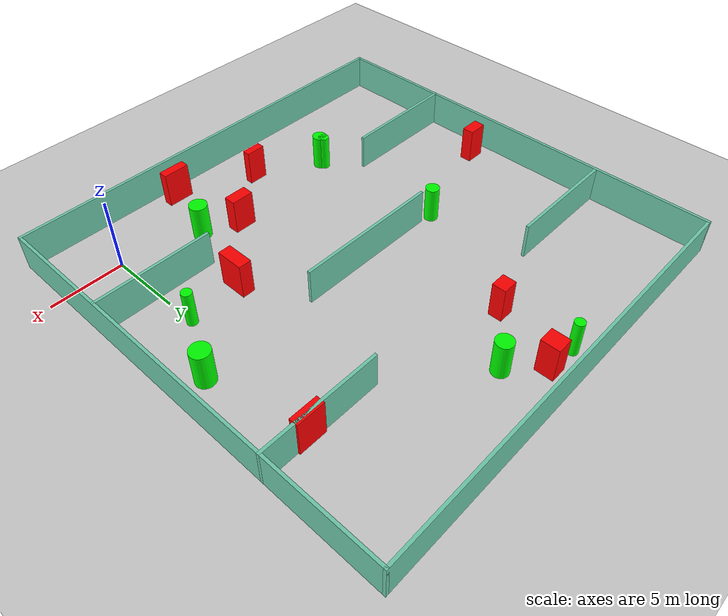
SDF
<sdf version="1.7">
 <world name="default">
  <light name="sun" type="directional">
   <pose>0 0 10 0 -0 0</pose>
   <diffuse>0.8 0.8 0.8 1</diffuse>
   <specular>0.2 0.2 0.2 1</specular>
   <attenuation>
    <range>1000</range>
    <constant>0.9</constant>
    <linear>0.01</linear>
    <quadratic>0.001</quadratic>
   </attenuation>
   <direction>-0.5 0.1 -0.9</direction>
   <spot><inner_angle>0</inner_angle><outer_angle>0</outer_angle><falloff>0</falloff></spot>
  </light>
  <model name="ground_plane">
   <static>1</static>
   <link name="link">
    <collision name="collision">
     <geometry><plane><normal>0 0 1</normal><size>100 100</size></plane></geometry>
     <surface>
      <contact><collide_bitmask>65535</collide_bitmask></contact>
      <friction><ode><mu>100</mu><mu2>50</mu2></ode></friction>
     </surface>
    </collision>
    <visual name="visual">
     <cast_shadows>0</cast_shadows>
     <geometry><plane><normal>0 0 1</normal><size>100 100</size></plane></geometry>
     <material>
      <script><uri>file://media/materials/scripts/gazebo.material</uri><name>Gazebo/Grey</name></script>
     </material>
    </visual>
   </link>
  </model>
  <gravity>0 0 -9.8</gravity>
  <magnetic_field>6e-06 2.3e-05 -4.2e-05</magnetic_field>
  <atmosphere type="adiabatic"/>
  <physics type="ode">
   <max_step_size>0.001</max_step_size>
   <real_time_factor>1</real_time_factor>
   <real_time_update_rate>1000</real_time_update_rate>
  </physics>
  <scene><ambient>0.4 0.4 0.4 1</ambient><background>0.7 0.7 0.7 1</background><shadows>1</shadows></scene>
  <spherical_coordinates>
   <surface_model>EARTH_WGS84</surface_model>
   <latitude_deg>0</latitude_deg>
   <longitude_deg>0</longitude_deg>
   <elevation>0</elevation>
   <heading_deg>0</heading_deg>
  </spherical_coordinates>
  <model name="my_base_walls">
   <link name="Wall_10">
    <collision name="Wall_10_Collision">
     <geometry><box><size>8.2 0.2 2.5</size></box></geometry>
     <pose>0 0 1.25 0 -0 0</pose>
    </collision>
    <visual name="Wall_10_Visual">
     <pose>0 0 1.25 0 -0 0</pose>
     <geometry><box><size>8.2 0.2 2.5</size></box></geometry>
     <material>
      <script><uri>file://media/materials/scripts/gazebo.material</uri><name>Gazebo/Grey</name></script>
      <ambient>0.435294 0.796078 0.67451 1</ambient>
     </material>
     <meta><layer>0</layer></meta>
    </visual>
    <pose>-11 -7 0 0 -0 0</pose>
   </link>
   <link name="Wall_12">
    <collision name="Wall_12_Collision">
     <geometry><box><size>8.2 0.2 2.5</size></box></geometry>
     <pose>0 0 1.25 0 -0 0</pose>
    </collision>
    <visual name="Wall_12_Visual">
     <pose>0 0 1.25 0 -0 0</pose>
     <geometry><box><size>8.2 0.2 2.5</size></box></geometry>
     <material>
      <script><uri>file://media/materials/scripts/gazebo.material</uri><name>Gazebo/Grey</name></script>
      <ambient>0.435294 0.796078 0.67451 1</ambient>
     </material>
     <meta><layer>0</layer></meta>
    </visual>
    <pose>-11 7 0 0 -0 0</pose>
   </link>
   <link name="Wall_14">
    <collision name="Wall_14_Collision">
     <geometry><box><size>8.2 0.2 2.5</size></box></geometry>
     <pose>0 0 1.25 0 -0 0</pose>
    </collision>
    <visual name="Wall_14_Visual">
     <pose>0 0 1.25 0 -0 0</pose>
     <geometry><box><size>8.2 0.2 2.5</size></box></geometry>
     <material>
      <script><uri>file://media/materials/scripts/gazebo.material</uri><name>Gazebo/Grey</name></script>
      <ambient>0.435294 0.796078 0.67451 1</ambient>
     </material>
     <meta><layer>0</layer></meta>
    </visual>
    <pose>11 7 0 0 -0 3.14159</pose>
   </link>
   <link name="Wall_16">
    <collision name="Wall_16_Collision">
     <geometry><box><size>10.2 0.2 2.5</size></box></geometry>
     <pose>0 0 1.25 0 -0 0</pose>
    </collision>
    <visual name="Wall_16_Visual">
     <pose>0 0 1.25 0 -0 0</pose>
     <geometry><box><size>10.2 0.2 2.5</size></box></geometry>
     <material>
      <script><uri>file://media/materials/scripts/gazebo.material</uri><name>Gazebo/Grey</name></script>
      <ambient>0.435294 0.796078 0.67451 1</ambient>
     </material>
     <meta><layer>0</layer></meta>
    </visual>
    <pose>0 0 0 0 -0 3.14159</pose>
   </link>
   <link name="Wall_2">
    <collision name="Wall_2_Collision">
     <geometry><box><size>30.2 0.2 2.5</size></box></geometry>
     <pose>0 0 1.25 0 -0 0</pose>
    </collision>
    <visual name="Wall_2_Visual">
     <pose>0 0 1.25 0 -0 0</pose>
     <geometry><box><size>30.2 0.2 2.5</size></box></geometry>
     <material>
      <script><uri>file://media/materials/scripts/gazebo.material</uri><name>Gazebo/Grey</name></script>
      <ambient>0.435294 0.796078 0.67451 1</ambient>
     </material>
     <meta><layer>0</layer></meta>
    </visual>
    <pose>0 -15 0 0 -0 3.14159</pose>
   </link>
   <link name="Wall_3">
    <collision name="Wall_3_Collision">
     <geometry><box><size>30.2 0.2 2.5</size></box></geometry>
     <pose>0 0 1.25 0 -0 0</pose>
    </collision>
    <visual name="Wall_3_Visual">
     <pose>0 0 1.25 0 -0 0</pose>
     <geometry><box><size>30.2 0.2 2.5</size></box></geometry>
     <material>
      <script><uri>file://media/materials/scripts/gazebo.material</uri><name>Gazebo/Grey</name></script>
      <ambient>0.435294 0.796078 0.67451 1</ambient>
     </material>
     <meta><layer>0</layer></meta>
    </visual>
    <pose>-15 0 0 0 -0 1.5708</pose>
   </link>
   <link name="Wall_4">
    <collision name="Wall_4_Collision">
     <geometry><box><size>30.2 0.2 2.5</size></box></geometry>
     <pose>0 0 1.25 0 -0 0</pose>
    </collision>
    <visual name="Wall_4_Visual">
     <pose>0 0 1.25 0 -0 0</pose>
     <geometry><box><size>30.2 0.2 2.5</size></box></geometry>
     <material>
      <script><uri>file://media/materials/scripts/gazebo.material</uri><name>Gazebo/Grey</name></script>
      <ambient>0.435294 0.796078 0.67451 1</ambient>
     </material>
     <meta><layer>0</layer></meta>
    </visual>
    <pose>0 15 0 0 -0 0</pose>
   </link>
   <link name="Wall_6">
    <collision name="Wall_6_Collision">
     <geometry><box><size>30.2 0.2 2.5</size></box></geometry>
     <pose>0 0 1.25 0 -0 0</pose>
    </collision>
    <visual name="Wall_6_Visual">
     <pose>0 0 1.25 0 -0 0</pose>
     <geometry><box><size>30.2 0.2 2.5</size></box></geometry>
     <material>
      <script><uri>file://media/materials/scripts/gazebo.material</uri><name>Gazebo/Grey</name></script>
      <ambient>0.435294 0.796078 0.67451 1</ambient>
     </material>
     <meta><layer>0</layer></meta>
    </visual>
    <pose>15 0 0 0 -0 1.5708</pose>
   </link>
   <link name="Wall_8">
    <collision name="Wall_8_Collision">
     <geometry><box><size>8.2 0.2 2.5</size></box></geometry>
     <pose>0 0 1.25 0 -0 0</pose>
    </collision>
    <visual name="Wall_8_Visual">
     <pose>0 0 1.25 0 -0 0</pose>
     <geometry><box><size>8.2 0.2 2.5</size></box></geometry>
     <material>
      <script><uri>file://media/materials/scripts/gazebo.material</uri><name>Gazebo/Grey</name></script>
      <ambient>0.435294 0.796078 0.67451 1</ambient>
     </material>
     <meta><layer>0</layer></meta>
    </visual>
    <pose>11 -7 0 0 -0 3.14159</pose>
   </link>
   <static>1</static>
   <pose>-11 11 0 0 -0 0</pose>
  </model>
  <model name="cylinder1">
   <static>1</static>
   <link name="link">
    <inertial>
     <mass>1</mass>
     <inertia><ixx>0.5</ixx><ixy>0</ixy><ixz>0</ixz><iyy>0.5</iyy><iyz>0</iyz><izz>1</izz></inertia>
    </inertial>
    <collision name="collision">
     <geometry><cylinder><radius>0.568939197417687</radius><length>2.5</length></cylinder></geometry>
    </collision>
    <visual name="visual">
     <geometry><cylinder><radius>0.568939197417687</radius><length>2.5</length></cylinder></geometry>
     <material>
      <ambient>0 1 0 1</ambient>
      <diffuse>0 1 0 1</diffuse>
      <specular>0.1 0.1 0.1 1</specular>
      <emissive>0 0 0 0</emissive>
     </material>
    </visual>
   </link>
   <pose>-9.394006186406795 22.397713277110547 1.25 0 0 0</pose>
  </model>
  <model name="cylinder2">
   <static>1</static>
   <link name="link">
    <inertial>
     <mass>1</mass>
     <inertia><ixx>0.5</ixx><ixy>0</ixy><ixz>0</ixz><iyy>0.5</iyy><iyz>0</iyz><izz>1</izz></inertia>
    </inertial>
    <collision name="collision">
     <geometry><cylinder><radius>0.47159929019017804</radius><length>2.5</length></cylinder></geometry>
    </collision>
    <visual name="visual">
     <geometry><cylinder><radius>0.47159929019017804</radius><length>2.5</length></cylinder></geometry>
     <material>
      <ambient>0 1 0 1</ambient>
      <diffuse>0 1 0 1</diffuse>
      <specular>0.1 0.1 0.1 1</specular>
      <emissive>0 0 0 0</emissive>
     </material>
    </visual>
   </link>
   <pose>-16.896494589913456 11.245341430718547 1.25 0 0 0</pose>
  </model>
  <model name="cylinder3">
   <static>1</static>
   <link name="link">
    <inertial>
     <mass>1</mass>
     <inertia><ixx>0.5</ixx><ixy>0</ixy><ixz>0</ixz><iyy>0.5</iyy><iyz>0</iyz><izz>1</izz></inertia>
    </inertial>
    <collision name="collision">
     <geometry><cylinder><radius>0.3703290364738131</radius><length>2.5</length></cylinder></geometry>
    </collision>
    <visual name="visual">
     <geometry><cylinder><radius>0.3703290364738131</radius><length>2.5</length></cylinder></geometry>
     <material>
      <ambient>0 1 0 1</ambient>
      <diffuse>0 1 0 1</diffuse>
      <specular>0.1 0.1 0.1 1</specular>
      <emissive>0 0 0 0</emissive>
     </material>
    </visual>
   </link>
   <pose>-16.082276400162648 1.8889381737255952 1.25 0 0 0</pose>
  </model>
  <model name="cylinder4">
   <static>1</static>
   <link name="link">
    <inertial>
     <mass>1</mass>
     <inertia><ixx>0.5</ixx><ixy>0</ixy><ixz>0</ixz><iyy>0.5</iyy><iyz>0</iyz><izz>1</izz></inertia>
    </inertial>
    <collision name="collision">
     <geometry><cylinder><radius>0.4872756266364487</radius><length>2.5</length></cylinder></geometry>
    </collision>
    <visual name="visual">
     <geometry><cylinder><radius>0.4872756266364487</radius><length>2.5</length></cylinder></geometry>
     <material>
      <ambient>0 1 0 1</ambient>
      <diffuse>0 1 0 1</diffuse>
      <specular>0.1 0.1 0.1 1</specular>
      <emissive>0 0 0 0</emissive>
     </material>
    </visual>
   </link>
   <pose>-15.995935186501338 1.564297163260827 1.25 0 0 0</pose>
  </model>
  <model name="cylinder5">
   <static>1</static>
   <link name="link">
    <inertial>
     <mass>1</mass>
     <inertia><ixx>0.5</ixx><ixy>0</ixy><ixz>0</ixz><iyy>0.5</iyy><iyz>0</iyz><izz>1</izz></inertia>
    </inertial>
    <collision name="collision">
     <geometry><cylinder><radius>0.3384753911532423</radius><length>2.5</length></cylinder></geometry>
    </collision>
    <visual name="visual">
     <geometry><cylinder><radius>0.3384753911532423</radius><length>2.5</length></cylinder></geometry>
     <material>
      <ambient>0 1 0 1</ambient>
      <diffuse>0 1 0 1</diffuse>
      <specular>0.1 0.1 0.1 1</specular>
      <emissive>0 0 0 0</emissive>
     </material>
    </visual>
   </link>
   <pose>-13.295211482993992 24.595315454536635 1.25 0 0 0</pose>
  </model>
  <model name="cylinder6">
   <static>1</static>
   <link name="link">
    <inertial>
     <mass>1</mass>
     <inertia><ixx>0.5</ixx><ixy>0</ixy><ixz>0</ixz><iyy>0.5</iyy><iyz>0</iyz><izz>1</izz></inertia>
    </inertial>
    <collision name="collision">
     <geometry><cylinder><radius>0.3515514903627001</radius><length>2.5</length></cylinder></geometry>
    </collision>
    <visual name="visual">
     <geometry><cylinder><radius>0.3515514903627001</radius><length>2.5</length></cylinder></geometry>
     <material>
      <ambient>0 1 0 1</ambient>
      <diffuse>0 1 0 1</diffuse>
      <specular>0.1 0.1 0.1 1</specular>
      <emissive>0 0 0 0</emissive>
     </material>
    </visual>
   </link>
   <pose>-0.06026638655903227 7.125440739675863 1.25 0 0 0</pose>
  </model>
  <model name="cylinder7">
   <static>1</static>
   <link name="link">
    <inertial>
     <mass>1</mass>
     <inertia><ixx>0.5</ixx><ixy>0</ixy><ixz>0</ixz><iyy>0.5</iyy><iyz>0</iyz><izz>1</izz></inertia>
    </inertial>
    <collision name="collision">
     <geometry><cylinder><radius>0.6446611674293513</radius><length>2.5</length></cylinder></geometry>
    </collision>
    <visual name="visual">
     <geometry><cylinder><radius>0.6446611674293513</radius><length>2.5</length></cylinder></geometry>
     <material>
      <ambient>0 1 0 1</ambient>
      <diffuse>0 1 0 1</diffuse>
      <specular>0.1 0.1 0.1 1</specular>
      <emissive>0 0 0 0</emissive>
     </material>
    </visual>
   </link>
   <pose>2.0468978906077133 11.049874525157568 1.25 0 0 0</pose>
  </model>
  <model name="cylinder8">
   <static>1</static>
   <link name="link">
    <inertial>
     <mass>1</mass>
     <inertia><ixx>0.5</ixx><ixy>0</ixy><ixz>0</ixz><iyy>0.5</iyy><iyz>0</iyz><izz>1</izz></inertia>
    </inertial>
    <collision name="collision">
     <geometry><cylinder><radius>0.6074078765473361</radius><length>2.5</length></cylinder></geometry>
    </collision>
    <visual name="visual">
     <geometry><cylinder><radius>0.6074078765473361</radius><length>2.5</length></cylinder></geometry>
     <material>
      <ambient>0 1 0 1</ambient>
      <diffuse>0 1 0 1</diffuse>
      <specular>0.1 0.1 0.1 1</specular>
      <emissive>0 0 0 0</emissive>
     </material>
    </visual>
   </link>
   <pose>-5.318309223658648 1.40683741608221 1.25 0 0 0</pose>
  </model>
  <model name="box1">
   <static>1</static>
   <link name="link">
    <inertial>
     <mass>1</mass>
     <inertia><ixx>0.083</ixx><ixy>0</ixy><ixz>0</ixz><iyy>0.083</iyy><iyz>0</iyz><izz>0.083</izz></inertia>
    </inertial>
    <collision name="collision">
     <geometry><box><size>1.1133097215946433 1.2385705673600613 2.5</size></box></geometry>
    </collision>
    <visual name="visual">
     <geometry><box><size>1.1133097215946433 1.2385705673600613 2.5</size></box></geometry>
     <material>
      <ambient>1 0 0 1</ambient>
      <diffuse>1 0 0 1</diffuse>
      <specular>0.1 0.1 0.1 1</specular>
      <emissive>0 0 0 0</emissive>
     </material>
    </visual>
    <sensor name="my_contact" type="contact">
     <contact><collision>box_collision</collision><topic>__default_topic__</topic></contact>
    </sensor>
   </link>
   <pose>-11.307814941420549 24.333647223216527 1.25 0 0 0</pose>
  </model>
  <model name="box2">
   <static>1</static>
   <link name="link">
    <inertial>
     <mass>1</mass>
     <inertia><ixx>0.083</ixx><ixy>0</ixy><ixz>0</ixz><iyy>0.083</iyy><iyz>0</iyz><izz>0.083</izz></inertia>
    </inertial>
    <collision name="collision">
     <geometry><box><size>1.8100078039825225 0.625797129291341 2.5</size></box></geometry>
    </collision>
    <visual name="visual">
     <geometry><box><size>1.8100078039825225 0.625797129291341 2.5</size></box></geometry>
     <material>
      <ambient>1 0 0 1</ambient>
      <diffuse>1 0 0 1</diffuse>
      <specular>0.1 0.1 0.1 1</specular>
      <emissive>0 0 0 0</emissive>
     </material>
    </visual>
    <sensor name="my_contact" type="contact">
     <contact><collision>box_collision</collision><topic>__default_topic__</topic></contact>
    </sensor>
   </link>
   <pose>-6.555513848876547 -2.821163775278307 1.25 0 0 0</pose>
  </model>
  <model name="box3">
   <static>1</static>
   <link name="link">
    <inertial>
     <mass>1</mass>
     <inertia><ixx>0.083</ixx><ixy>0</ixy><ixz>0</ixz><iyy>0.083</iyy><iyz>0</iyz><izz>0.083</izz></inertia>
    </inertial>
    <collision name="collision">
     <geometry><box><size>1.3620293212842265 0.8031985368539725 2.5</size></box></geometry>
    </collision>
    <visual name="visual">
     <geometry><box><size>1.3620293212842265 0.8031985368539725 2.5</size></box></geometry>
     <material>
      <ambient>1 0 0 1</ambient>
      <diffuse>1 0 0 1</diffuse>
      <specular>0.1 0.1 0.1 1</specular>
      <emissive>0 0 0 0</emissive>
     </material>
    </visual>
    <sensor name="my_contact" type="contact">
     <contact><collision>box_collision</collision><topic>__default_topic__</topic></contact>
    </sensor>
   </link>
   <pose>-24.38237587522838 8.899632499957878 1.25 0 0 0</pose>
  </model>
  <model name="box4">
   <static>1</static>
   <link name="link">
    <inertial>
     <mass>1</mass>
     <inertia><ixx>0.083</ixx><ixy>0</ixy><ixz>0</ixz><iyy>0.083</iyy><iyz>0</iyz><izz>0.083</izz></inertia>
    </inertial>
    <collision name="collision">
     <geometry><box><size>1.0602422086456706 0.9320813378413628 2.5</size></box></geometry>
    </collision>
    <visual name="visual">
     <geometry><box><size>1.0602422086456706 0.9320813378413628 2.5</size></box></geometry>
     <material>
      <ambient>1 0 0 1</ambient>
      <diffuse>1 0 0 1</diffuse>
      <specular>0.1 0.1 0.1 1</specular>
      <emissive>0 0 0 0</emissive>
     </material>
    </visual>
    <sensor name="my_contact" type="contact">
     <contact><collision>box_collision</collision><topic>__default_topic__</topic></contact>
    </sensor>
   </link>
   <pose>-12.914038218314666 19.83921669173472 1.25 0 0 0</pose>
  </model>
  <model name="box5">
   <static>1</static>
   <link name="link">
    <inertial>
     <mass>1</mass>
     <inertia><ixx>0.083</ixx><ixy>0</ixy><ixz>0</ixz><iyy>0.083</iyy><iyz>0</iyz><izz>0.083</izz></inertia>
    </inertial>
    <collision name="collision">
     <geometry><box><size>1.347211741167444 0.5284272404176751 2.5</size></box></geometry>
    </collision>
    <visual name="visual">
     <geometry><box><size>1.347211741167444 0.5284272404176751 2.5</size></box></geometry>
     <material>
      <ambient>1 0 0 1</ambient>
      <diffuse>1 0 0 1</diffuse>
      <specular>0.1 0.1 0.1 1</specular>
      <emissive>0 0 0 0</emissive>
     </material>
    </visual>
    <sensor name="my_contact" type="contact">
     <contact><collision>box_collision</collision><topic>__default_topic__</topic></contact>
    </sensor>
   </link>
   <pose>-11.736048035999909 -0.6532833771337114 1.25 0 0 0</pose>
  </model>
  <model name="box6">
   <static>1</static>
   <link name="link">
    <inertial>
     <mass>1</mass>
     <inertia><ixx>0.083</ixx><ixy>0</ixy><ixz>0</ixz><iyy>0.083</iyy><iyz>0</iyz><izz>0.083</izz></inertia>
    </inertial>
    <collision name="collision">
     <geometry><box><size>1.8765883572761661 0.5943021613076176 2.5</size></box></geometry>
    </collision>
    <visual name="visual">
     <geometry><box><size>1.8765883572761661 0.5943021613076176 2.5</size></box></geometry>
     <material>
      <ambient>1 0 0 1</ambient>
      <diffuse>1 0 0 1</diffuse>
      <specular>0.1 0.1 0.1 1</specular>
      <emissive>0 0 0 0</emissive>
     </material>
    </visual>
    <sensor name="my_contact" type="contact">
     <contact><collision>box_collision</collision><topic>__default_topic__</topic></contact>
    </sensor>
   </link>
   <pose>0.8240529599308246 17.92964449186054 1.25 0 0 0</pose>
  </model>
  <model name="box7">
   <static>1</static>
   <link name="link">
    <inertial>
     <mass>1</mass>
     <inertia><ixx>0.083</ixx><ixy>0</ixy><ixz>0</ixz><iyy>0.083</iyy><iyz>0</iyz><izz>0.083</izz></inertia>
    </inertial>
    <collision name="collision">
     <geometry><box><size>0.879114027973485 1.913885676874216 2.5</size></box></geometry>
    </collision>
    <visual name="visual">
     <geometry><box><size>0.879114027973485 1.913885676874216 2.5</size></box></geometry>
     <material>
      <ambient>1 0 0 1</ambient>
      <diffuse>1 0 0 1</diffuse>
      <specular>0.1 0.1 0.1 1</specular>
      <emissive>0 0 0 0</emissive>
     </material>
    </visual>
    <sensor name="my_contact" type="contact">
     <contact><collision>box_collision</collision><topic>__default_topic__</topic></contact>
    </sensor>
   </link>
   <pose>-3.8176269066628947 6.841329515432609 1.25 0 0 0</pose>
  </model>
  <model name="box8">
   <static>1</static>
   <link name="link">
    <inertial>
     <mass>1</mass>
     <inertia><ixx>0.083</ixx><ixy>0</ixy><ixz>0</ixz><iyy>0.083</iyy><iyz>0</iyz><izz>0.083</izz></inertia>
    </inertial>
    <collision name="collision">
     <geometry><box><size>1.5606431567979404 0.8248958385710101 2.5</size></box></geometry>
    </collision>
    <visual name="visual">
     <geometry><box><size>1.5606431567979404 0.8248958385710101 2.5</size></box></geometry>
     <material>
      <ambient>1 0 0 1</ambient>
      <diffuse>1 0 0 1</diffuse>
      <specular>0.1 0.1 0.1 1</specular>
      <emissive>0 0 0 0</emissive>
     </material>
    </visual>
    <sensor name="my_contact" type="contact">
     <contact><collision>box_collision</collision><topic>__default_topic__</topic></contact>
    </sensor>
   </link>
   <pose>-7.72280183603624 2.5531748720640115 1.25 0 0 0</pose>
  </model>
 </world>
</sdf>
